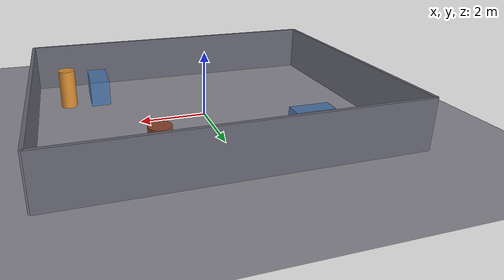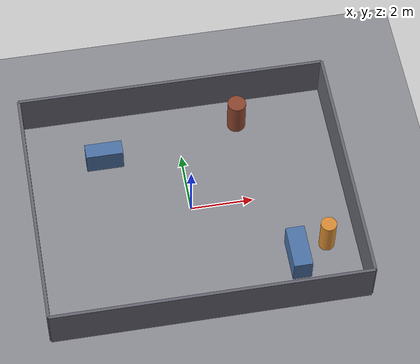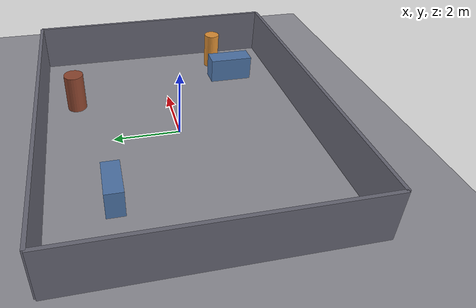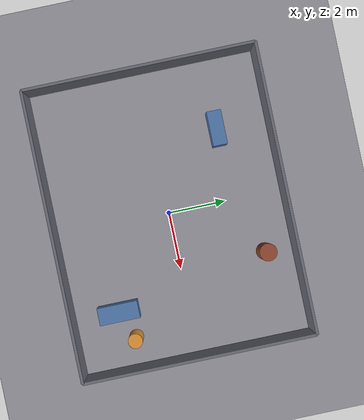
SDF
<?xml version="1.0" ?>
<sdf version="1.10">
  <world name="compass_office">
    <plugin filename="gz-sim-physics-system" name="gz::sim::systems::Physics" />
    <plugin filename="gz-sim-user-commands-system" name="gz::sim::systems::UserCommands" />
    <plugin filename="gz-sim-scene-broadcaster-system" name="gz::sim::systems::SceneBroadcaster" />
    <plugin filename="gz-sim-imu-system" name="gz::sim::systems::Imu" />
    <plugin filename="gz-sim-contact-system" name="gz::sim::systems::Contact" />
    <plugin filename="gz-sim-sensors-system" name="gz::sim::systems::Sensors">
      <render_engine>ogre2</render_engine>
    </plugin>
    <light name="sun" type="directional">
      <cast_shadows>true</cast_shadows>
      <pose>0 0 10 0 0 0</pose>
      <diffuse>0.9 0.9 0.9 1</diffuse>
      <specular>0.2 0.2 0.2 1</specular>
      <direction>0.5 0.1 -0.9</direction>
    </light>
    <model name="ground_plane">
      <static>true</static>
      <link name="link">
        <collision name="collision">
          <geometry>
            <plane>
              <normal>0 0 1</normal>
              <size>15.000 15.000</size>
            </plane>
          </geometry>
        </collision>
        <visual name="visual">
          <geometry>
            <plane>
              <normal>0 0 1</normal>
              <size>15.000 15.000</size>
            </plane>
          </geometry>
          <material>
            <ambient>0.550 0.550 0.580 1</ambient>
            <diffuse>0.550 0.550 0.580 1</diffuse>
            <specular>0.650 0.650 0.680 1</specular>
          </material>
        </visual>
      </link>
    </model>
    <model name="perimeter_north">
      <static>true</static>
      <pose>0.000000 4.000000 0.750000 0.000000 0.000000 0.000000</pose>
      <link name="link">
        <collision name="collision">
          <geometry>
            <box>
              <size>10.000000 0.100000 1.500000</size>
            </box>
          </geometry>
        </collision>
        <visual name="visual">
          <geometry>
            <box>
              <size>10.000000 0.100000 1.500000</size>
            </box>
          </geometry>
          <material>
            <ambient>0.400 0.400 0.450 1</ambient>
            <diffuse>0.400 0.400 0.450 1</diffuse>
            <specular>0.500 0.500 0.550 1</specular>
          </material>
        </visual>
      </link>
    </model>
    <model name="perimeter_south">
      <static>true</static>
      <pose>0.000000 -4.000000 0.750000 0.000000 0.000000 0.000000</pose>
      <link name="link">
        <collision name="collision">
          <geometry>
            <box>
              <size>10.000000 0.100000 1.500000</size>
            </box>
          </geometry>
        </collision>
        <visual name="visual">
          <geometry>
            <box>
              <size>10.000000 0.100000 1.500000</size>
            </box>
          </geometry>
          <material>
            <ambient>0.400 0.400 0.450 1</ambient>
            <diffuse>0.400 0.400 0.450 1</diffuse>
            <specular>0.500 0.500 0.550 1</specular>
          </material>
        </visual>
      </link>
    </model>
    <model name="perimeter_west">
      <static>true</static>
      <pose>-5.000000 0.000000 0.750000 0.000000 0.000000 1.570796</pose>
      <link name="link">
        <collision name="collision">
          <geometry>
            <box>
              <size>8.000000 0.100000 1.500000</size>
            </box>
          </geometry>
        </collision>
        <visual name="visual">
          <geometry>
            <box>
              <size>8.000000 0.100000 1.500000</size>
            </box>
          </geometry>
          <material>
            <ambient>0.400 0.400 0.450 1</ambient>
            <diffuse>0.400 0.400 0.450 1</diffuse>
            <specular>0.500 0.500 0.550 1</specular>
          </material>
        </visual>
      </link>
    </model>
    <model name="perimeter_east">
      <static>true</static>
      <pose>5.000000 0.000000 0.750000 0.000000 0.000000 1.570796</pose>
      <link name="link">
        <collision name="collision">
          <geometry>
            <box>
              <size>8.000000 0.100000 1.500000</size>
            </box>
          </geometry>
        </collision>
        <visual name="visual">
          <geometry>
            <box>
              <size>8.000000 0.100000 1.500000</size>
            </box>
          </geometry>
          <material>
            <ambient>0.400 0.400 0.450 1</ambient>
            <diffuse>0.400 0.400 0.450 1</diffuse>
            <specular>0.500 0.500 0.550 1</specular>
          </material>
        </visual>
      </link>
    </model>
    <model name="pillar_center">
      <static>true</static>
      <pose>2.000000 3.000000 0.600000 0.000000 0.000000 0.000000</pose>
      <link name="link">
        <collision name="collision">
          <geometry>
            <cylinder>
              <radius>0.300000</radius>
              <length>1.200000</length>
            </cylinder>
          </geometry>
        </collision>
        <visual name="visual">
          <geometry>
            <cylinder>
              <radius>0.300000</radius>
              <length>1.200000</length>
            </cylinder>
          </geometry>
          <material>
            <ambient>0.550 0.270 0.180 1</ambient>
            <diffuse>0.550 0.270 0.180 1</diffuse>
            <specular>0.650 0.370 0.280 1</specular>
          </material>
        </visual>
      </link>
    </model>
    <model name="shelf_left">
      <static>true</static>
      <pose>-2.500000 2.200000 0.400000 0.000000 0.000000 0.000000</pose>
      <link name="link">
        <collision name="collision">
          <geometry>
            <box>
              <size>1.200000 0.500000 0.800000</size>
            </box>
          </geometry>
        </collision>
        <visual name="visual">
          <geometry>
            <box>
              <size>1.200000 0.500000 0.800000</size>
            </box>
          </geometry>
          <material>
            <ambient>0.300 0.450 0.650 1</ambient>
            <diffuse>0.300 0.450 0.650 1</diffuse>
            <specular>0.400 0.550 0.750 1</specular>
          </material>
        </visual>
      </link>
    </model>
    <model name="shelf_right">
      <static>true</static>
      <pose>3.000000 -2.400000 0.400000 0.000000 0.000000 0.000000</pose>
      <link name="link">
        <collision name="collision">
          <geometry>
            <box>
              <size>0.600000 1.400000 0.800000</size>
            </box>
          </geometry>
        </collision>
        <visual name="visual">
          <geometry>
            <box>
              <size>0.600000 1.400000 0.800000</size>
            </box>
          </geometry>
          <material>
            <ambient>0.300 0.450 0.650 1</ambient>
            <diffuse>0.300 0.450 0.650 1</diffuse>
            <specular>0.400 0.550 0.750 1</specular>
          </material>
        </visual>
      </link>
    </model>
    <!-- 반응형 보행자: 자체 DiffDrive 를 가진 동적 원기둥 "사람".
         reactive_pedestrian 노드가 ped/cmd_vel 로 조향하고 ped/odom 으로 위치를 읽는다. -->
    <model name="pedestrian">
      <pose>4.0 -2.0 0.0 0 0 1.5708</pose>
      <link name="ped_base">
        <pose>0 0 0.6 0 0 0</pose>
        <inertial>
          <mass>60.0</mass>
          <inertia>
            <ixx>9.0</ixx><iyy>9.0</iyy><izz>1.0</izz>
            <ixy>0</ixy><ixz>0</ixz><iyz>0</iyz>
          </inertia>
        </inertial>
        <collision name="collision">
          <geometry><cylinder><radius>0.25</radius><length>1.2</length></cylinder></geometry>
        </collision>
        <visual name="visual">
          <geometry><cylinder><radius>0.25</radius><length>1.2</length></cylinder></geometry>
          <material>
            <ambient>0.85 0.55 0.20 1</ambient>
            <diffuse>0.85 0.55 0.20 1</diffuse>
            <specular>0.95 0.65 0.30 1</specular>
          </material>
        </visual>
      </link>
      <!-- 좌/우 작은 바퀴: DiffDrive 가 구동할 수 있도록 연속 회전 관절. -->
      <link name="ped_left_wheel">
        <pose>0 0.18 0.05 1.5708 0 0</pose>
        <inertial><mass>0.5</mass>
          <inertia><ixx>1e-3</ixx><iyy>1e-3</iyy><izz>1e-3</izz><ixy>0</ixy><ixz>0</ixz><iyz>0</iyz></inertia>
        </inertial>
        <collision name="collision"><geometry><cylinder><radius>0.05</radius><length>0.04</length></cylinder></geometry></collision>
        <visual name="visual"><geometry><cylinder><radius>0.05</radius><length>0.04</length></cylinder></geometry></visual>
      </link>
      <link name="ped_right_wheel">
        <pose>0 -0.18 0.05 1.5708 0 0</pose>
        <inertial><mass>0.5</mass>
          <inertia><ixx>1e-3</ixx><iyy>1e-3</iyy><izz>1e-3</izz><ixy>0</ixy><ixz>0</ixz><iyz>0</iyz></inertia>
        </inertial>
        <collision name="collision"><geometry><cylinder><radius>0.05</radius><length>0.04</length></cylinder></geometry></collision>
        <visual name="visual"><geometry><cylinder><radius>0.05</radius><length>0.04</length></cylinder></geometry></visual>
      </link>
      <joint name="ped_left_joint" type="revolute">
        <parent>ped_base</parent><child>ped_left_wheel</child>
        <axis><xyz>0 1 0</xyz><limit><lower>-1e16</lower><upper>1e16</upper></limit></axis>
      </joint>
      <joint name="ped_right_joint" type="revolute">
        <parent>ped_base</parent><child>ped_right_wheel</child>
        <axis><xyz>0 1 0</xyz><limit><lower>-1e16</lower><upper>1e16</upper></limit></axis>
      </joint>
      <plugin filename="gz-sim-diff-drive-system" name="gz::sim::systems::DiffDrive">
        <left_joint>ped_left_joint</left_joint>
        <right_joint>ped_right_joint</right_joint>
        <wheel_separation>0.36</wheel_separation>
        <wheel_radius>0.05</wheel_radius>
        <odom_publish_frequency>20</odom_publish_frequency>
        <topic>ped/cmd_vel</topic>
        <odom_topic>ped/odom</odom_topic>
        <frame_id>odom</frame_id>
        <child_frame_id>pedestrian</child_frame_id>
      </plugin>
    </model>
  </world>
</sdf>
